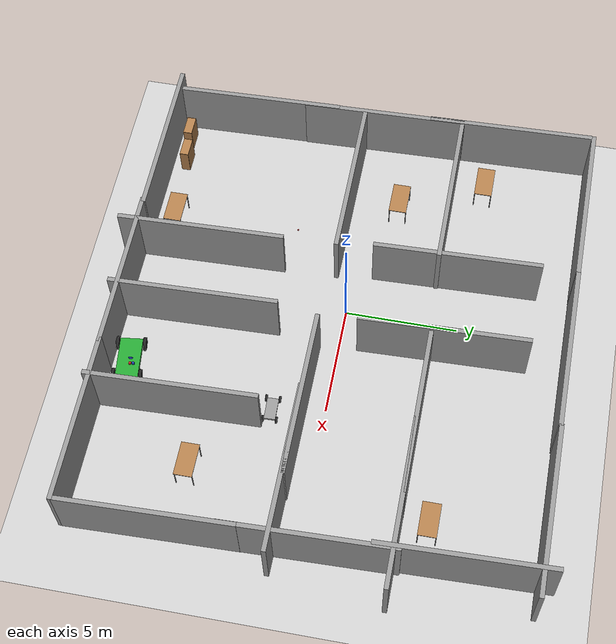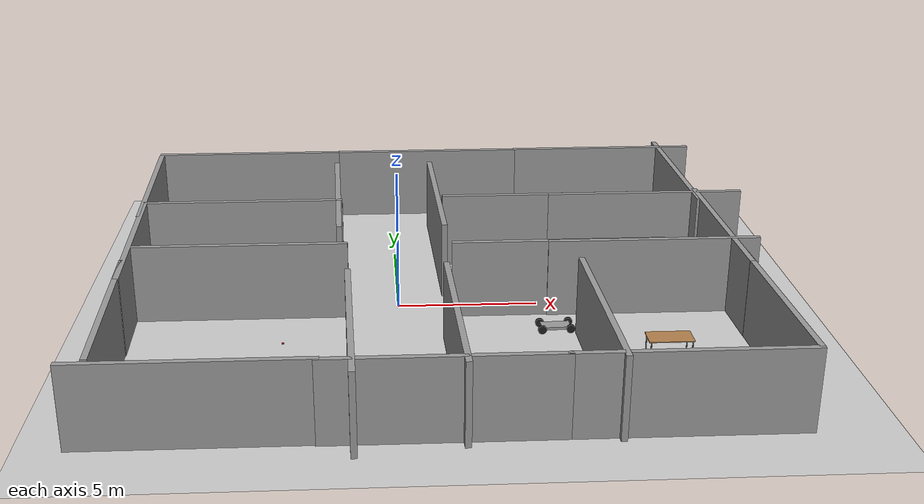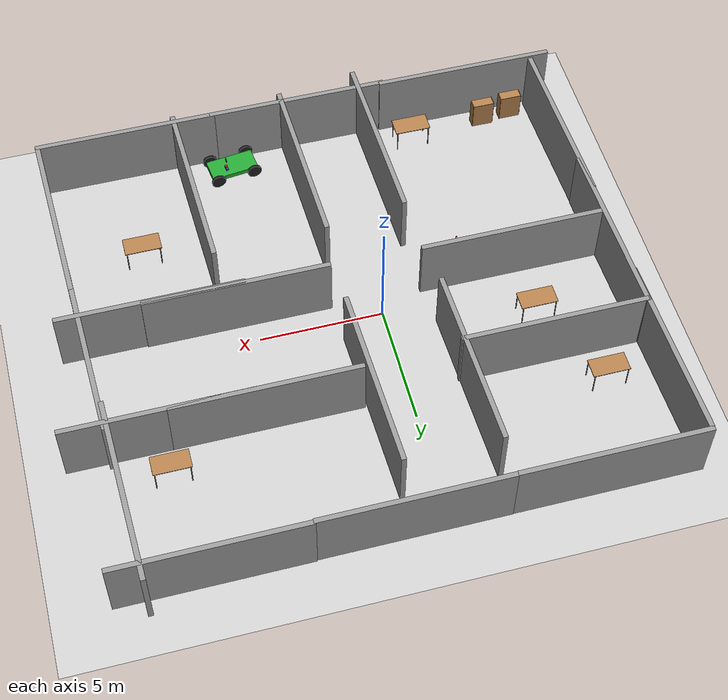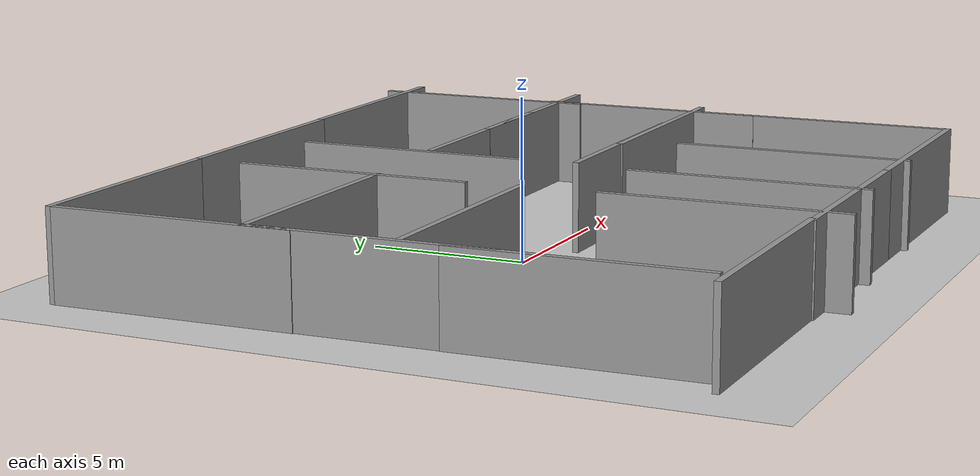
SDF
<sdf version="1.7">
 <world name="default">
  <light name="sun" type="directional">
   <pose>0 0 10 0 -0 0</pose>
   <diffuse>0.8 0.8 0.8 1</diffuse>
   <specular>0.2 0.2 0.2 1</specular>
   <attenuation>
    <range>1000</range>
    <constant>0.9</constant>
    <linear>0.01</linear>
    <quadratic>0.001</quadratic>
   </attenuation>
   <direction>-0.5 0.1 -0.9</direction>
   <spot><inner_angle>0</inner_angle><outer_angle>0</outer_angle><falloff>0</falloff></spot>
  </light>
  <model name="ground_plane">
   <static>1</static>
   <link name="link">
    <collision name="collision">
     <geometry><plane><normal>0 0 1</normal><size>100 100</size></plane></geometry>
     <surface>
      <contact><collide_bitmask>65535</collide_bitmask></contact>
      <friction><ode><mu>100</mu><mu2>50</mu2></ode></friction>
     </surface>
    </collision>
    <visual name="visual">
     <cast_shadows>0</cast_shadows>
     <geometry><plane><normal>0 0 1</normal><size>100 100</size></plane></geometry>
     <material>
      <script><uri>file://media/materials/scripts/gazebo.material</uri><name>Gazebo/Grey</name></script>
     </material>
    </visual>
   </link>
  </model>
  <gravity>0 0 -9.8</gravity>
  <magnetic_field>6e-06 2.3e-05 -4.2e-05</magnetic_field>
  <atmosphere type="adiabatic"/>
  <physics type="ode">
   <max_step_size>0.001</max_step_size>
   <real_time_factor>1</real_time_factor>
   <real_time_update_rate>1000</real_time_update_rate>
  </physics>
  <scene><ambient>0.4 0.4 0.4 1</ambient><background>0.7 0.7 0.7 1</background><shadows>1</shadows></scene>
  <spherical_coordinates>
   <surface_model>EARTH_WGS84</surface_model>
   <latitude_deg>0</latitude_deg>
   <longitude_deg>0</longitude_deg>
   <elevation>0</elevation>
   <heading_deg>0</heading_deg>
  </spherical_coordinates>
  <model name="grey_wall">
   <static>1</static>
   <link name="link">
    <pose>0 0 1.4 0 -0 0</pose>
    <collision name="collision"><geometry><box><size>7.5 0.2 2.8</size></box></geometry></collision>
    <visual name="visual">
     <cast_shadows>0</cast_shadows>
     <geometry><box><size>7.5 0.2 2.8</size></box></geometry>
     <material>
      <script>
       <uri>model://grey_wall/materials/scripts</uri>
       <uri>model://grey_wall/materials/textures</uri>
       <name>vrc/grey_wall</name>
      </script>
     </material>
    </visual>
   </link>
   <pose>-5.9992 9.85252 0 0 -0 0</pose>
  </model>
  <model name="grey_wall_clone">
   <static>1</static>
   <link name="link">
    <pose>0 0 1.4 0 -0 0</pose>
    <collision name="collision"><geometry><box><size>7.5 0.2 2.8</size></box></geometry></collision>
    <visual name="visual">
     <cast_shadows>0</cast_shadows>
     <geometry><box><size>7.5 0.2 2.8</size></box></geometry>
     <material>
      <script>
       <uri>model://grey_wall/materials/scripts</uri>
       <uri>model://grey_wall/materials/textures</uri>
       <name>vrc/grey_wall</name>
      </script>
     </material>
    </visual>
   </link>
   <pose>1.47725 9.86404 0 0 -0 0</pose>
  </model>
  <model name="grey_wall_clone_0">
   <static>1</static>
   <link name="link">
    <pose>0 0 1.4 0 -0 0</pose>
    <collision name="collision"><geometry><box><size>7.5 0.2 2.8</size></box></geometry></collision>
    <visual name="visual">
     <cast_shadows>0</cast_shadows>
     <geometry><box><size>7.5 0.2 2.8</size></box></geometry>
     <material>
      <script>
       <uri>model://grey_wall/materials/scripts</uri>
       <uri>model://grey_wall/materials/textures</uri>
       <name>vrc/grey_wall</name>
      </script>
     </material>
    </visual>
   </link>
   <pose>8.90751 9.9006 0 0 -0 0</pose>
  </model>
  <model name="grey_wall_clone_1">
   <static>1</static>
   <link name="link">
    <pose>0 0 1.4 0 -0 0</pose>
    <collision name="collision"><geometry><box><size>7.5 0.2 2.8</size></box></geometry></collision>
    <visual name="visual">
     <cast_shadows>0</cast_shadows>
     <geometry><box><size>7.5 0.2 2.8</size></box></geometry>
     <material>
      <script>
       <uri>model://grey_wall/materials/scripts</uri>
       <uri>model://grey_wall/materials/textures</uri>
       <name>vrc/grey_wall</name>
      </script>
     </material>
    </visual>
   </link>
   <pose>-5.77244 3.76137 0 0 -0 0</pose>
  </model>
  <model name="grey_wall_clone_2">
   <static>1</static>
   <link name="link">
    <pose>0 0 1.4 0 -0 0</pose>
    <collision name="collision"><geometry><box><size>7.5 0.2 2.8</size></box></geometry></collision>
    <visual name="visual">
     <cast_shadows>0</cast_shadows>
     <geometry><box><size>7.5 0.2 2.8</size></box></geometry>
     <material>
      <script>
       <uri>model://grey_wall/materials/scripts</uri>
       <uri>model://grey_wall/materials/textures</uri>
       <name>vrc/grey_wall</name>
      </script>
     </material>
    </visual>
   </link>
   <pose>5.54541 4 0 0 -0 0</pose>
  </model>
  <model name="grey_wall_clone_3">
   <static>1</static>
   <link name="link">
    <pose>0 0 1.4 0 -0 0</pose>
    <collision name="collision"><geometry><box><size>7.5 0.2 2.8</size></box></geometry></collision>
    <visual name="visual">
     <cast_shadows>0</cast_shadows>
     <geometry><box><size>7.5 0.2 2.8</size></box></geometry>
     <material>
      <script>
       <uri>model://grey_wall/materials/scripts</uri>
       <uri>model://grey_wall/materials/textures</uri>
       <name>vrc/grey_wall</name>
      </script>
     </material>
    </visual>
   </link>
   <pose>-5.51815 -0.784604 0 0 -0 0</pose>
  </model>
  <model name="grey_wall_clone_4">
   <static>1</static>
   <link name="link">
    <pose>0 0 1.4 0 -0 0</pose>
    <collision name="collision"><geometry><box><size>7.5 0.2 2.8</size></box></geometry></collision>
    <visual name="visual">
     <cast_shadows>0</cast_shadows>
     <geometry><box><size>7.5 0.2 2.8</size></box></geometry>
     <material>
      <script>
       <uri>model://grey_wall/materials/scripts</uri>
       <uri>model://grey_wall/materials/textures</uri>
       <name>vrc/grey_wall</name>
      </script>
     </material>
    </visual>
   </link>
   <pose>-6.21793 -9.72473 0 0 -0 0</pose>
  </model>
  <model name="grey_wall_clone_5">
   <static>1</static>
   <link name="link">
    <pose>0 0 1.4 0 -0 0</pose>
    <collision name="collision"><geometry><box><size>7.5 0.2 2.8</size></box></geometry></collision>
    <visual name="visual">
     <cast_shadows>0</cast_shadows>
     <geometry><box><size>7.5 0.2 2.8</size></box></geometry>
     <material>
      <script>
       <uri>model://grey_wall/materials/scripts</uri>
       <uri>model://grey_wall/materials/textures</uri>
       <name>vrc/grey_wall</name>
      </script>
     </material>
    </visual>
   </link>
   <pose>1.09571 -9.7785 0 0 -0 0</pose>
  </model>
  <model name="grey_wall_clone_6">
   <static>1</static>
   <link name="link">
    <pose>0 0 1.4 0 -0 0</pose>
    <collision name="collision"><geometry><box><size>7.5 0.2 2.8</size></box></geometry></collision>
    <visual name="visual">
     <cast_shadows>0</cast_shadows>
     <geometry><box><size>7.5 0.2 2.8</size></box></geometry>
     <material>
      <script>
       <uri>model://grey_wall/materials/scripts</uri>
       <uri>model://grey_wall/materials/textures</uri>
       <name>vrc/grey_wall</name>
      </script>
     </material>
    </visual>
   </link>
   <pose>8.39767 -9.77612 0 0 -0 0</pose>
  </model>
  <model name="grey_wall_clone_7">
   <static>1</static>
   <link name="link">
    <pose>0 0 1.4 0 -0 0</pose>
    <collision name="collision"><geometry><box><size>7.5 0.2 2.8</size></box></geometry></collision>
    <visual name="visual">
     <cast_shadows>0</cast_shadows>
     <geometry><box><size>7.5 0.2 2.8</size></box></geometry>
     <material>
      <script>
       <uri>model://grey_wall/materials/scripts</uri>
       <uri>model://grey_wall/materials/textures</uri>
       <name>vrc/grey_wall</name>
      </script>
     </material>
    </visual>
   </link>
   <pose>5.62138 -0.90834 0 0 -0 0</pose>
  </model>
  <model name="grey_wall_clone_8">
   <static>1</static>
   <link name="link">
    <pose>0 0 1.4 0 -0 0</pose>
    <collision name="collision"><geometry><box><size>7.5 0.2 2.8</size></box></geometry></collision>
    <visual name="visual">
     <cast_shadows>0</cast_shadows>
     <geometry><box><size>7.5 0.2 2.8</size></box></geometry>
     <material>
      <script>
       <uri>model://grey_wall/materials/scripts</uri>
       <uri>model://grey_wall/materials/textures</uri>
       <name>vrc/grey_wall</name>
      </script>
     </material>
    </visual>
   </link>
   <pose>8.99858 -0.960213 0 0 -0 0</pose>
  </model>
  <model name="grey_wall_clone_9">
   <static>1</static>
   <link name="link">
    <pose>0 0 1.4 0 -0 0</pose>
    <collision name="collision"><geometry><box><size>7.5 0.2 2.8</size></box></geometry></collision>
    <visual name="visual">
     <cast_shadows>0</cast_shadows>
     <geometry><box><size>7.5 0.2 2.8</size></box></geometry>
     <material>
      <script>
       <uri>model://grey_wall/materials/scripts</uri>
       <uri>model://grey_wall/materials/textures</uri>
       <name>vrc/grey_wall</name>
      </script>
     </material>
    </visual>
   </link>
   <pose>9.64209 3.99652 0 0 -0 0</pose>
  </model>
  <model name="grey_wall_clone_10">
   <static>1</static>
   <link name="link">
    <pose>0 0 1.4 0 -0 0</pose>
    <collision name="collision"><geometry><box><size>7.5 0.2 2.8</size></box></geometry></collision>
    <visual name="visual">
     <cast_shadows>0</cast_shadows>
     <geometry><box><size>7.5 0.2 2.8</size></box></geometry>
     <material>
      <script>
       <uri>model://grey_wall/materials/scripts</uri>
       <uri>model://grey_wall/materials/textures</uri>
       <name>vrc/grey_wall</name>
      </script>
     </material>
    </visual>
   </link>
   <pose>-9.22958 -5.76702 0 0 -0 1.59909</pose>
  </model>
  <model name="grey_wall_clone_10_clone">
   <static>1</static>
   <link name="link">
    <pose>0 0 1.4 0 -0 0</pose>
    <collision name="collision"><geometry><box><size>7.5 0.2 2.8</size></box></geometry></collision>
    <visual name="visual">
     <cast_shadows>0</cast_shadows>
     <geometry><box><size>7.5 0.2 2.8</size></box></geometry>
     <material>
      <script>
       <uri>model://grey_wall/materials/scripts</uri>
       <uri>model://grey_wall/materials/textures</uri>
       <name>vrc/grey_wall</name>
      </script>
     </material>
    </visual>
   </link>
   <pose>-9.37081 0.123734 0 0 -0 1.59909</pose>
  </model>
  <model name="grey_wall_clone_10_clone_0">
   <static>1</static>
   <link name="link">
    <pose>0 0 1.4 0 -0 0</pose>
    <collision name="collision"><geometry><box><size>7.5 0.2 2.8</size></box></geometry></collision>
    <visual name="visual">
     <cast_shadows>0</cast_shadows>
     <geometry><box><size>7.5 0.2 2.8</size></box></geometry>
     <material>
      <script>
       <uri>model://grey_wall/materials/scripts</uri>
       <uri>model://grey_wall/materials/textures</uri>
       <name>vrc/grey_wall</name>
      </script>
     </material>
    </visual>
   </link>
   <pose>-9.56639 6.02526 0 0 -0 1.59909</pose>
  </model>
  <model name="grey_wall_clone_10_clone_1">
   <static>1</static>
   <link name="link">
    <pose>0 0 1.4 0 -0 0</pose>
    <collision name="collision"><geometry><box><size>7.5 0.2 2.8</size></box></geometry></collision>
    <visual name="visual">
     <cast_shadows>0</cast_shadows>
     <geometry><box><size>7.5 0.2 2.8</size></box></geometry>
     <material>
      <script>
       <uri>model://grey_wall/materials/scripts</uri>
       <uri>model://grey_wall/materials/textures</uri>
       <name>vrc/grey_wall</name>
      </script>
     </material>
    </visual>
   </link>
   <pose>-1.63794 -6.89457 0 0 -0 1.59909</pose>
  </model>
  <model name="grey_wall_clone_10_clone_2">
   <static>1</static>
   <link name="link">
    <pose>0 0 1.4 0 -0 0</pose>
    <collision name="collision"><geometry><box><size>7.5 0.2 2.8</size></box></geometry></collision>
    <visual name="visual">
     <cast_shadows>0</cast_shadows>
     <geometry><box><size>7.5 0.2 2.8</size></box></geometry>
     <material>
      <script>
       <uri>model://grey_wall/materials/scripts</uri>
       <uri>model://grey_wall/materials/textures</uri>
       <name>vrc/grey_wall</name>
      </script>
     </material>
    </visual>
   </link>
   <pose>-2.19743 4.57634 0 0 -0 1.59909</pose>
  </model>
  <model name="grey_wall_clone_10_clone_3">
   <static>1</static>
   <link name="link">
    <pose>0 0 1.4 0 -0 0</pose>
    <collision name="collision"><geometry><box><size>7.5 0.2 2.8</size></box></geometry></collision>
    <visual name="visual">
     <cast_shadows>0</cast_shadows>
     <geometry><box><size>7.5 0.2 2.8</size></box></geometry>
     <material>
      <script>
       <uri>model://grey_wall/materials/scripts</uri>
       <uri>model://grey_wall/materials/textures</uri>
       <name>vrc/grey_wall</name>
      </script>
     </material>
    </visual>
   </link>
   <pose>1.60325 4.53725 0 0 -0 1.59909</pose>
  </model>
  <model name="grey_wall_clone_10_clone_4">
   <static>1</static>
   <link name="link">
    <pose>0 0 1.4 0 -0 0</pose>
    <collision name="collision"><geometry><box><size>7.5 0.2 2.8</size></box></geometry></collision>
    <visual name="visual">
     <cast_shadows>0</cast_shadows>
     <geometry><box><size>7.5 0.2 2.8</size></box></geometry>
     <material>
      <script>
       <uri>model://grey_wall/materials/scripts</uri>
       <uri>model://grey_wall/materials/textures</uri>
       <name>vrc/grey_wall</name>
      </script>
     </material>
    </visual>
   </link>
   <pose>1.67397 -6.46223 0 0 -0 1.59909</pose>
  </model>
  <model name="grey_wall_clone_10_clone_5">
   <static>1</static>
   <link name="link">
    <pose>0 0 1.4 0 -0 0</pose>
    <collision name="collision"><geometry><box><size>7.5 0.2 2.8</size></box></geometry></collision>
    <visual name="visual">
     <cast_shadows>0</cast_shadows>
     <geometry><box><size>7.5 0.2 2.8</size></box></geometry>
     <material>
      <script>
       <uri>model://grey_wall/materials/scripts</uri>
       <uri>model://grey_wall/materials/textures</uri>
       <name>vrc/grey_wall</name>
      </script>
     </material>
    </visual>
   </link>
   <pose>6.2648 -6.32249 0 0 -0 1.59909</pose>
  </model>
  <model name="grey_wall_clone_10_clone_6">
   <static>1</static>
   <link name="link">
    <pose>0 0 1.4 0 -0 0</pose>
    <collision name="collision"><geometry><box><size>7.5 0.2 2.8</size></box></geometry></collision>
    <visual name="visual">
     <cast_shadows>0</cast_shadows>
     <geometry><box><size>7.5 0.2 2.8</size></box></geometry>
     <material>
      <script>
       <uri>model://grey_wall/materials/scripts</uri>
       <uri>model://grey_wall/materials/textures</uri>
       <name>vrc/grey_wall</name>
      </script>
     </material>
    </visual>
   </link>
   <pose>11.9522 -5.98919 0 0 -0 1.59909</pose>
  </model>
  <model name="grey_wall_clone_10_clone_7">
   <static>1</static>
   <link name="link">
    <pose>0 0 1.4 0 -0 0</pose>
    <collision name="collision"><geometry><box><size>7.5 0.2 2.8</size></box></geometry></collision>
    <visual name="visual">
     <cast_shadows>0</cast_shadows>
     <geometry><box><size>7.5 0.2 2.8</size></box></geometry>
     <material>
      <script>
       <uri>model://grey_wall/materials/scripts</uri>
       <uri>model://grey_wall/materials/textures</uri>
       <name>vrc/grey_wall</name>
      </script>
     </material>
    </visual>
   </link>
   <pose>11.7586 0.575491 0 0 -0 1.59909</pose>
  </model>
  <model name="grey_wall_clone_10_clone_8">
   <static>1</static>
   <link name="link">
    <pose>0 0 1.4 0 -0 0</pose>
    <collision name="collision"><geometry><box><size>7.5 0.2 2.8</size></box></geometry></collision>
    <visual name="visual">
     <cast_shadows>0</cast_shadows>
     <geometry><box><size>7.5 0.2 2.8</size></box></geometry>
     <material>
      <script>
       <uri>model://grey_wall/materials/scripts</uri>
       <uri>model://grey_wall/materials/textures</uri>
       <name>vrc/grey_wall</name>
      </script>
     </material>
    </visual>
   </link>
   <pose>11.475 6.85135 0 0 -0 1.59909</pose>
  </model>
  <model name="bookshelf">
   <static>1</static>
   <link name="link">
    <inertial><mass>1</mass></inertial>
    <collision name="back">
     <pose>0 0.005 0.6 0 -0 0</pose>
     <geometry><box><size>0.9 0.01 1.2</size></box></geometry>
    </collision>
    <visual name="visual1">
     <pose>0 0.005 0.6 0 -0 0</pose>
     <geometry><box><size>0.9 0.01 1.2</size></box></geometry>
     <material>
      <script><uri>file://media/materials/scripts/gazebo.material</uri><name>Gazebo/Wood</name></script>
     </material>
    </visual>
    <collision name="left_side">
     <pose>0.45 -0.195 0.6 0 -0 0</pose>
     <geometry><box><size>0.02 0.4 1.2</size></box></geometry>
    </collision>
    <visual name="visual2">
     <pose>0.45 -0.195 0.6 0 -0 0</pose>
     <geometry><box><size>0.02 0.4 1.2</size></box></geometry>
     <material>
      <script><uri>file://media/materials/scripts/gazebo.material</uri><name>Gazebo/Wood</name></script>
     </material>
    </visual>
    <collision name="right_side">
     <pose>-0.45 -0.195 0.6 0 -0 0</pose>
     <geometry><box><size>0.02 0.4 1.2</size></box></geometry>
    </collision>
    <visual name="visual3">
     <pose>-0.45 -0.195 0.6 0 -0 0</pose>
     <geometry><box><size>0.02 0.4 1.2</size></box></geometry>
     <material>
      <script><uri>file://media/materials/scripts/gazebo.material</uri><name>Gazebo/Wood</name></script>
     </material>
    </visual>
    <collision name="bottom">
     <pose>0 -0.195 0.03 0 -0 0</pose>
     <geometry><box><size>0.88 0.4 0.06</size></box></geometry>
    </collision>
    <visual name="visual4">
     <pose>0 -0.195 0.03 0 -0 0</pose>
     <geometry><box><size>0.88 0.4 0.06</size></box></geometry>
     <material>
      <script><uri>file://media/materials/scripts/gazebo.material</uri><name>Gazebo/Wood</name></script>
     </material>
    </visual>
    <collision name="top">
     <pose>0 -0.195 1.19 0 -0 0</pose>
     <geometry><box><size>0.88 0.4 0.02</size></box></geometry>
    </collision>
    <visual name="visual5">
     <pose>0 -0.195 1.19 0 -0 0</pose>
     <geometry><box><size>0.88 0.4 0.02</size></box></geometry>
     <material>
      <script><uri>file://media/materials/scripts/gazebo.material</uri><name>Gazebo/Wood</name></script>
     </material>
    </visual>
    <collision name="low_shelf">
     <pose>0 -0.195 0.43 0 -0 0</pose>
     <geometry><box><size>0.88 0.4 0.02</size></box></geometry>
    </collision>
    <visual name="visual6">
     <pose>0 -0.195 0.43 0 -0 0</pose>
     <geometry><box><size>0.88 0.4 0.02</size></box></geometry>
     <material>
      <script><uri>file://media/materials/scripts/gazebo.material</uri><name>Gazebo/Wood</name></script>
     </material>
    </visual>
    <collision name="high_shelf">
     <pose>0 -0.195 0.8 0 -0 0</pose>
     <geometry><box><size>0.88 0.4 0.02</size></box></geometry>
    </collision>
    <visual name="visual7">
     <pose>0 -0.195 0.8 0 -0 0</pose>
     <geometry><box><size>0.88 0.4 0.02</size></box></geometry>
     <material>
      <script><uri>file://media/materials/scripts/gazebo.material</uri><name>Gazebo/Wood</name></script>
     </material>
    </visual>
   </link>
   <pose>-8.20456 -8.92305 0 0 -0 0</pose>
  </model>
  <model name="bookshelf_clone">
   <static>1</static>
   <link name="link">
    <inertial><mass>1</mass></inertial>
    <collision name="back">
     <pose>0 0.005 0.6 0 -0 0</pose>
     <geometry><box><size>0.9 0.01 1.2</size></box></geometry>
    </collision>
    <visual name="visual1">
     <pose>0 0.005 0.6 0 -0 0</pose>
     <geometry><box><size>0.9 0.01 1.2</size></box></geometry>
     <material>
      <script><uri>file://media/materials/scripts/gazebo.material</uri><name>Gazebo/Wood</name></script>
     </material>
    </visual>
    <collision name="left_side">
     <pose>0.45 -0.195 0.6 0 -0 0</pose>
     <geometry><box><size>0.02 0.4 1.2</size></box></geometry>
    </collision>
    <visual name="visual2">
     <pose>0.45 -0.195 0.6 0 -0 0</pose>
     <geometry><box><size>0.02 0.4 1.2</size></box></geometry>
     <material>
      <script><uri>file://media/materials/scripts/gazebo.material</uri><name>Gazebo/Wood</name></script>
     </material>
    </visual>
    <collision name="right_side">
     <pose>-0.45 -0.195 0.6 0 -0 0</pose>
     <geometry><box><size>0.02 0.4 1.2</size></box></geometry>
    </collision>
    <visual name="visual3">
     <pose>-0.45 -0.195 0.6 0 -0 0</pose>
     <geometry><box><size>0.02 0.4 1.2</size></box></geometry>
     <material>
      <script><uri>file://media/materials/scripts/gazebo.material</uri><name>Gazebo/Wood</name></script>
     </material>
    </visual>
    <collision name="bottom">
     <pose>0 -0.195 0.03 0 -0 0</pose>
     <geometry><box><size>0.88 0.4 0.06</size></box></geometry>
    </collision>
    <visual name="visual4">
     <pose>0 -0.195 0.03 0 -0 0</pose>
     <geometry><box><size>0.88 0.4 0.06</size></box></geometry>
     <material>
      <script><uri>file://media/materials/scripts/gazebo.material</uri><name>Gazebo/Wood</name></script>
     </material>
    </visual>
    <collision name="top">
     <pose>0 -0.195 1.19 0 -0 0</pose>
     <geometry><box><size>0.88 0.4 0.02</size></box></geometry>
    </collision>
    <visual name="visual5">
     <pose>0 -0.195 1.19 0 -0 0</pose>
     <geometry><box><size>0.88 0.4 0.02</size></box></geometry>
     <material>
      <script><uri>file://media/materials/scripts/gazebo.material</uri><name>Gazebo/Wood</name></script>
     </material>
    </visual>
    <collision name="low_shelf">
     <pose>0 -0.195 0.43 0 -0 0</pose>
     <geometry><box><size>0.88 0.4 0.02</size></box></geometry>
    </collision>
    <visual name="visual6">
     <pose>0 -0.195 0.43 0 -0 0</pose>
     <geometry><box><size>0.88 0.4 0.02</size></box></geometry>
     <material>
      <script><uri>file://media/materials/scripts/gazebo.material</uri><name>Gazebo/Wood</name></script>
     </material>
    </visual>
    <collision name="high_shelf">
     <pose>0 -0.195 0.8 0 -0 0</pose>
     <geometry><box><size>0.88 0.4 0.02</size></box></geometry>
    </collision>
    <visual name="visual7">
     <pose>0 -0.195 0.8 0 -0 0</pose>
     <geometry><box><size>0.88 0.4 0.02</size></box></geometry>
     <material>
      <script><uri>file://media/materials/scripts/gazebo.material</uri><name>Gazebo/Wood</name></script>
     </material>
    </visual>
   </link>
   <pose>-6.93526 -8.78781 0 0 -0 0</pose>
  </model>
  <model name="table">
   <static>1</static>
   <link name="link">
    <collision name="surface">
     <pose>0 0 1 0 -0 0</pose>
     <geometry><box><size>1.5 0.8 0.03</size></box></geometry>
     <surface><friction><ode><mu>0.6</mu><mu2>0.6</mu2></ode></friction></surface>
    </collision>
    <visual name="visual1">
     <pose>0 0 1 0 -0 0</pose>
     <geometry><box><size>1.5 0.8 0.03</size></box></geometry>
     <material>
      <script><uri>file://media/materials/scripts/gazebo.material</uri><name>Gazebo/Wood</name></script>
     </material>
    </visual>
    <collision name="front_left_leg">
     <pose>0.68 0.38 0.5 0 -0 0</pose>
     <geometry><cylinder><radius>0.02</radius><length>1</length></cylinder></geometry>
    </collision>
    <visual name="front_left_leg">
     <pose>0.68 0.38 0.5 0 -0 0</pose>
     <geometry><cylinder><radius>0.02</radius><length>1</length></cylinder></geometry>
     <material>
      <script><uri>file://media/materials/scripts/gazebo.material</uri><name>Gazebo/Grey</name></script>
     </material>
    </visual>
    <collision name="front_right_leg">
     <pose>0.68 -0.38 0.5 0 -0 0</pose>
     <geometry><cylinder><radius>0.02</radius><length>1</length></cylinder></geometry>
    </collision>
    <visual name="front_right_leg">
     <pose>0.68 -0.38 0.5 0 -0 0</pose>
     <geometry><cylinder><radius>0.02</radius><length>1</length></cylinder></geometry>
     <material>
      <script><uri>file://media/materials/scripts/gazebo.material</uri><name>Gazebo/Grey</name></script>
     </material>
    </visual>
    <collision name="back_right_leg">
     <pose>-0.68 -0.38 0.5 0 -0 0</pose>
     <geometry><cylinder><radius>0.02</radius><length>1</length></cylinder></geometry>
    </collision>
    <visual name="back_right_leg">
     <pose>-0.68 -0.38 0.5 0 -0 0</pose>
     <geometry><cylinder><radius>0.02</radius><length>1</length></cylinder></geometry>
     <material>
      <script><uri>file://media/materials/scripts/gazebo.material</uri><name>Gazebo/Grey</name></script>
     </material>
    </visual>
    <collision name="back_left_leg">
     <pose>-0.68 0.38 0.5 0 -0 0</pose>
     <geometry><cylinder><radius>0.02</radius><length>1</length></cylinder></geometry>
    </collision>
    <visual name="back_left_leg">
     <pose>-0.68 0.38 0.5 0 -0 0</pose>
     <geometry><cylinder><radius>0.02</radius><length>1</length></cylinder></geometry>
     <material>
      <script><uri>file://media/materials/scripts/gazebo.material</uri><name>Gazebo/Grey</name></script>
     </material>
    </visual>
   </link>
   <pose>-3.63233 -8.6998 0 0 -0 0</pose>
  </model>
  <model name="car">
   <link name="chassis">
    <pose>0 0 0.3 0 -0 0</pose>
    <collision name="collision"><geometry><box><size>2 1 0.2</size></box></geometry></collision>
    <visual name="visual">
     <geometry><box><size>2 1 0.2</size></box></geometry>
     <material>
      <script><uri>file://media/materials/scripts/gazebo.material</uri><name>Gazebo/Green</name></script>
     </material>
    </visual>
    <inertial>
     <inertia><ixx>1</ixx><ixy>0</ixy><ixz>0</ixz><iyy>1</iyy><iyz>0</iyz><izz>1</izz></inertia>
     <mass>1</mass>
    </inertial>
   </link>
   <link name="front_left_wheel">
    <pose>0.8 0.6 0.3 -0 1.5707 1.5707</pose>
    <collision name="collision">
     <geometry><cylinder><radius>0.3</radius><length>0.1</length></cylinder></geometry>
    </collision>
    <visual name="visual">
     <geometry><cylinder><radius>0.3</radius><length>0.1</length></cylinder></geometry>
     <material>
      <script><uri>file://media/materials/scripts/gazebo.material</uri><name>Gazebo/Black</name></script>
     </material>
    </visual>
    <inertial>
     <inertia><ixx>1</ixx><ixy>0</ixy><ixz>0</ixz><iyy>1</iyy><iyz>0</iyz><izz>1</izz></inertia>
     <mass>1</mass>
    </inertial>
   </link>
   <link name="front_right_wheel">
    <pose>0.8 -0.6 0.3 -0 1.5707 1.5707</pose>
    <collision name="collision">
     <geometry><cylinder><radius>0.3</radius><length>0.1</length></cylinder></geometry>
    </collision>
    <visual name="visual">
     <geometry><cylinder><radius>0.3</radius><length>0.1</length></cylinder></geometry>
     <material>
      <script><uri>file://media/materials/scripts/gazebo.material</uri><name>Gazebo/Black</name></script>
     </material>
    </visual>
    <inertial>
     <inertia><ixx>1</ixx><ixy>0</ixy><ixz>0</ixz><iyy>1</iyy><iyz>0</iyz><izz>1</izz></inertia>
     <mass>1</mass>
    </inertial>
   </link>
   <link name="back_right_wheel">
    <pose>-0.8 -0.6 0.3 -0 1.5707 1.5707</pose>
    <collision name="collision">
     <geometry><cylinder><radius>0.3</radius><length>0.1</length></cylinder></geometry>
    </collision>
    <visual name="visual">
     <geometry><cylinder><radius>0.3</radius><length>0.1</length></cylinder></geometry>
     <material>
      <script><uri>file://media/materials/scripts/gazebo.material</uri><name>Gazebo/Black</name></script>
     </material>
    </visual>
    <inertial>
     <inertia><ixx>1</ixx><ixy>0</ixy><ixz>0</ixz><iyy>1</iyy><iyz>0</iyz><izz>1</izz></inertia>
     <mass>1</mass>
    </inertial>
   </link>
   <link name="back_left_wheel">
    <pose>-0.8 0.6 0.3 -0 1.5707 1.5707</pose>
    <collision name="collision">
     <geometry><cylinder><radius>0.3</radius><length>0.1</length></cylinder></geometry>
    </collision>
    <visual name="visual">
     <geometry><cylinder><radius>0.3</radius><length>0.1</length></cylinder></geometry>
     <material>
      <script><uri>file://media/materials/scripts/gazebo.material</uri><name>Gazebo/Black</name></script>
     </material>
    </visual>
    <inertial>
     <inertia><ixx>1</ixx><ixy>0</ixy><ixz>0</ixz><iyy>1</iyy><iyz>0</iyz><izz>1</izz></inertia>
     <mass>1</mass>
    </inertial>
   </link>
   <link name="gas_pedal">
    <pose>0.3 0.1 0.5 0 -0 0</pose>
    <collision name="collision"><geometry><box><size>0.1 0.1 0.1</size></box></geometry></collision>
    <visual name="visual">
     <geometry><box><size>0.1 0.1 0.1</size></box></geometry>
     <material>
      <script><uri>file://media/materials/scripts/gazebo.material</uri><name>Gazebo/Red</name></script>
     </material>
    </visual>
    <inertial>
     <inertia><ixx>1</ixx><ixy>0</ixy><ixz>0</ixz><iyy>1</iyy><iyz>0</iyz><izz>1</izz></inertia>
     <mass>1</mass>
    </inertial>
   </link>
   <link name="brake_pedal">
    <pose>0.3 0.25 0.5 0 -0 0</pose>
    <collision name="collision"><geometry><box><size>0.1 0.1 0.1</size></box></geometry></collision>
    <visual name="visual">
     <geometry><box><size>0.1 0.1 0.1</size></box></geometry>
     <material>
      <script><uri>file://media/materials/scripts/gazebo.material</uri><name>Gazebo/Blue</name></script>
     </material>
    </visual>
    <inertial>
     <inertia><ixx>1</ixx><ixy>0</ixy><ixz>0</ixz><iyy>1</iyy><iyz>0</iyz><izz>1</izz></inertia>
     <mass>1</mass>
    </inertial>
   </link>
   <link name="steering_wheel">
    <pose>0.3 0.2 1 0 1.5707 0</pose>
    <collision name="collision">
     <geometry><cylinder><radius>0.1</radius><length>0.01</length></cylinder></geometry>
    </collision>
    <visual name="visual">
     <geometry><cylinder><radius>0.1</radius><length>0.01</length></cylinder></geometry>
     <material>
      <script><uri>file://media/materials/scripts/gazebo.material</uri><name>Gazebo/Blue</name></script>
     </material>
    </visual>
    <inertial>
     <inertia><ixx>1</ixx><ixy>0</ixy><ixz>0</ixz><iyy>1</iyy><iyz>0</iyz><izz>1</izz></inertia>
     <mass>1</mass>
    </inertial>
   </link>
   <joint name="gas_joint" type="prismatic">
    <parent>chassis</parent>
    <child>gas_pedal</child>
    <axis>
     <xyz expressed_in="__model__">1 0 0</xyz>
     <limit><lower>0</lower><upper>0.2</upper></limit>
     <dynamics><spring_reference>0</spring_reference><spring_stiffness>0</spring_stiffness></dynamics>
    </axis>
   </joint>
   <joint name="brake_joint" type="prismatic">
    <parent>chassis</parent>
    <child>brake_pedal</child>
    <axis>
     <xyz expressed_in="__model__">1 0 0</xyz>
     <limit><lower>0</lower><upper>0.2</upper></limit>
     <dynamics><spring_reference>0</spring_reference><spring_stiffness>0</spring_stiffness></dynamics>
    </axis>
   </joint>
   <joint name="steering_joint" type="revolute">
    <parent>chassis</parent>
    <child>steering_wheel</child>
    <axis>
     <xyz expressed_in="__model__">1 0 0</xyz>
     <limit><lower>-7.853</lower><upper>7.853</upper></limit>
     <dynamics><spring_reference>0</spring_reference><spring_stiffness>0</spring_stiffness></dynamics>
    </axis>
   </joint>
   <joint name="front_left_joint" type="revolute2">
    <parent>chassis</parent>
    <child>front_left_wheel</child>
    <axis>
     <xyz expressed_in="__model__">0 0 1</xyz>
     <limit><lower>-7.62771e-08</lower><upper>-7.62771e-08</upper></limit>
     <dynamics><spring_reference>0</spring_reference><spring_stiffness>0</spring_stiffness></dynamics>
    </axis>
    <axis2>
     <xyz expressed_in="__model__">0 1 0</xyz>
     <limit><upper>1e+16</upper><lower>-1e+16</lower></limit>
     <dynamics><spring_reference>0</spring_reference><spring_stiffness>0</spring_stiffness></dynamics>
    </axis2>
    <physics><ode><limit><cfm>0</cfm><erp>0.9</erp></limit></ode></physics>
   </joint>
   <joint name="front_right_joint" type="revolute2">
    <parent>chassis</parent>
    <child>front_right_wheel</child>
    <axis>
     <xyz expressed_in="__model__">0 0 1</xyz>
     <limit><lower>-7.62771e-08</lower><upper>-7.62771e-08</upper></limit>
     <dynamics><spring_reference>0</spring_reference><spring_stiffness>0</spring_stiffness></dynamics>
    </axis>
    <axis2>
     <xyz expressed_in="__model__">0 1 0</xyz>
     <limit><upper>1e+16</upper><lower>-1e+16</lower></limit>
     <dynamics><spring_reference>0</spring_reference><spring_stiffness>0</spring_stiffness></dynamics>
    </axis2>
    <physics><ode><limit><cfm>0</cfm><erp>0.9</erp></limit></ode></physics>
   </joint>
   <joint name="back_right_joint" type="revolute2">
    <parent>chassis</parent>
    <child>back_right_wheel</child>
    <axis>
     <xyz expressed_in="__model__">0 0 1</xyz>
     <limit><lower>0</lower><upper>0</upper></limit>
     <dynamics><spring_reference>0</spring_reference><spring_stiffness>0</spring_stiffness></dynamics>
    </axis>
    <axis2>
     <xyz expressed_in="__model__">0 1 0</xyz>
     <limit><upper>1e+16</upper><lower>-1e+16</lower></limit>
     <dynamics><spring_reference>0</spring_reference><spring_stiffness>0</spring_stiffness></dynamics>
    </axis2>
    <physics><ode><limit><cfm>0</cfm><erp>0.9</erp></limit></ode></physics>
   </joint>
   <joint name="back_left_joint" type="revolute2">
    <parent>chassis</parent>
    <child>back_left_wheel</child>
    <axis>
     <xyz expressed_in="__model__">0 0 1</xyz>
     <limit><lower>0</lower><upper>0</upper></limit>
     <dynamics><spring_reference>0</spring_reference><spring_stiffness>0</spring_stiffness></dynamics>
    </axis>
    <axis2>
     <xyz expressed_in="__model__">0 1 0</xyz>
     <limit><upper>1e+16</upper><lower>-1e+16</lower></limit>
     <dynamics><spring_reference>0</spring_reference><spring_stiffness>0</spring_stiffness></dynamics>
    </axis2>
    <physics><ode><limit><cfm>0</cfm><erp>0.9</erp></limit></ode></physics>
   </joint>
   <plugin name="vehicle" filename="libVehiclePlugin.so">
    <front_left>front_left_joint</front_left>
    <front_right>front_right_joint</front_right>
    <back_left>back_left_joint</back_left>
    <back_right>back_right_joint</back_right>
    <gas>gas_joint</gas>
    <brake>brake_joint</brake>
    <steering>steering_joint</steering>
    <front_power>10</front_power>
    <rear_power>10</rear_power>
    <tire_angle_range>0.5</tire_angle_range>
    <max_speed>10</max_speed>
    <aero_load>0.1</aero_load>
   </plugin>
   <pose>4.20854 -8.93563 3e-06 2e-06 2e-06 0.121943</pose>
  </model>
  <model name="cart_front_steer">
   <link name="chassis">
    <pose>0 0 0.15 0 -0 0</pose>
    <inertial>
     <pose>0.1 0 0 0 -0 0</pose>
     <mass>10</mass>
     <inertia>
      <ixx>0.216667</ixx>
      <iyy>0.841667</iyy>
      <izz>1.04167</izz>
      <ixy>0</ixy>
      <ixz>0</ixz>
      <iyz>0</iyz>
     </inertia>
    </inertial>
    <collision name="collision"><geometry><box><size>1 0.5 0.1</size></box></geometry></collision>
    <visual name="visual">
     <geometry><box><size>1 0.5 0.1</size></box></geometry>
     <material>
      <script><uri>file://media/materials/scripts/gazebo.material</uri><name>Gazebo/Grey</name></script>
     </material>
    </visual>
   </link>
   <link name="wheel_front_left">
    <pose>0.5 0.298 0.15 -1.5708 -0.087266 0</pose>
    <inertial>
     <mass>0.5</mass>
     <inertia>
      <ixx>0.00307917</ixx>
      <iyy>0.00307917</iyy>
      <izz>0.005625</izz>
      <ixy>0</ixy>
      <ixz>0</ixz>
      <iyz>0</iyz>
     </inertia>
    </inertial>
    <collision name="collision">
     <geometry><cylinder><radius>0.15</radius><length>0.08</length></cylinder></geometry>
    </collision>
    <visual name="visual">
     <geometry><cylinder><radius>0.15</radius><length>0.08</length></cylinder></geometry>
     <material>
      <script><uri>file://media/materials/scripts/gazebo.material</uri><name>Gazebo/Black</name></script>
     </material>
    </visual>
   </link>
   <joint name="wheel_front_left_steer_spin" type="universal">
    <parent>chassis</parent>
    <child>wheel_front_left</child>
    <axis>
     <xyz>0 -1 0</xyz>
     <limit><lower>-0.610865</lower><upper>0.610865</upper></limit>
     <dynamics><spring_reference>0</spring_reference><spring_stiffness>0</spring_stiffness></dynamics>
    </axis>
    <axis2>
     <xyz>0 0 1</xyz>
     <limit><upper>1e+16</upper><lower>-1e+16</lower></limit>
     <dynamics><spring_reference>0</spring_reference><spring_stiffness>0</spring_stiffness></dynamics>
    </axis2>
   </joint>
   <link name="wheel_front_right">
    <pose>0.5 -0.298 0.15 -1.5708 -0.087266 0</pose>
    <inertial>
     <mass>0.5</mass>
     <inertia>
      <ixx>0.00307917</ixx>
      <iyy>0.00307917</iyy>
      <izz>0.005625</izz>
      <ixy>0</ixy>
      <ixz>0</ixz>
      <iyz>0</iyz>
     </inertia>
    </inertial>
    <collision name="collision">
     <geometry><cylinder><radius>0.15</radius><length>0.08</length></cylinder></geometry>
    </collision>
    <visual name="visual">
     <geometry><cylinder><radius>0.15</radius><length>0.08</length></cylinder></geometry>
     <material>
      <script><uri>file://media/materials/scripts/gazebo.material</uri><name>Gazebo/Black</name></script>
     </material>
    </visual>
   </link>
   <joint name="wheel_front_right_steer_spin" type="universal">
    <parent>chassis</parent>
    <child>wheel_front_right</child>
    <axis>
     <xyz>0 -1 0</xyz>
     <limit><lower>-0.610865</lower><upper>0.610865</upper></limit>
     <dynamics><spring_reference>0</spring_reference><spring_stiffness>0</spring_stiffness></dynamics>
    </axis>
    <axis2>
     <xyz>0 0 1</xyz>
     <limit><upper>1e+16</upper><lower>-1e+16</lower></limit>
     <dynamics><spring_reference>0</spring_reference><spring_stiffness>0</spring_stiffness></dynamics>
    </axis2>
   </joint>
   <link name="wheel_rear_left">
    <pose>-0.5 0.298 0.15 -1.5708 0 0</pose>
    <inertial>
     <mass>0.5</mass>
     <inertia>
      <ixx>0.00307917</ixx>
      <iyy>0.00307917</iyy>
      <izz>0.005625</izz>
      <ixy>0</ixy>
      <ixz>0</ixz>
      <iyz>0</iyz>
     </inertia>
    </inertial>
    <collision name="collision">
     <geometry><cylinder><radius>0.15</radius><length>0.08</length></cylinder></geometry>
    </collision>
    <visual name="visual">
     <geometry><cylinder><radius>0.15</radius><length>0.08</length></cylinder></geometry>
     <material>
      <script><uri>file://media/materials/scripts/gazebo.material</uri><name>Gazebo/Black</name></script>
     </material>
    </visual>
   </link>
   <joint name="wheel_rear_left_spin" type="revolute">
    <parent>chassis</parent>
    <child>wheel_rear_left</child>
    <axis>
     <xyz>0 0 1</xyz>
     <limit><lower>-1e+16</lower><upper>1e+16</upper></limit>
     <dynamics><spring_reference>0</spring_reference><spring_stiffness>0</spring_stiffness></dynamics>
    </axis>
   </joint>
   <link name="wheel_rear_right">
    <pose>-0.5 -0.298 0.15 -1.5708 0 0</pose>
    <inertial>
     <mass>0.5</mass>
     <inertia>
      <ixx>0.00307917</ixx>
      <iyy>0.00307917</iyy>
      <izz>0.005625</izz>
      <ixy>0</ixy>
      <ixz>0</ixz>
      <iyz>0</iyz>
     </inertia>
    </inertial>
    <collision name="collision">
     <geometry><cylinder><radius>0.15</radius><length>0.08</length></cylinder></geometry>
    </collision>
    <visual name="visual">
     <geometry><cylinder><radius>0.15</radius><length>0.08</length></cylinder></geometry>
     <material>
      <script><uri>file://media/materials/scripts/gazebo.material</uri><name>Gazebo/Black</name></script>
     </material>
    </visual>
   </link>
   <joint name="wheel_rear_right_spin" type="revolute">
    <parent>chassis</parent>
    <child>wheel_rear_right</child>
    <axis>
     <xyz>0 0 1</xyz>
     <limit><lower>-1e+16</lower><upper>1e+16</upper></limit>
     <dynamics><spring_reference>0</spring_reference><spring_stiffness>0</spring_stiffness></dynamics>
    </axis>
   </joint>
   <pose>5.39107 -2.30318 -2e-06 -1.6e-05 -1e-06 0.040173</pose>
  </model>
  <model name="table_0">
   <static>1</static>
   <link name="link">
    <collision name="surface">
     <pose>0 0 1 0 -0 0</pose>
     <geometry><box><size>1.5 0.8 0.03</size></box></geometry>
     <surface><friction><ode><mu>0.6</mu><mu2>0.6</mu2></ode></friction></surface>
    </collision>
    <visual name="visual1">
     <pose>0 0 1 0 -0 0</pose>
     <geometry><box><size>1.5 0.8 0.03</size></box></geometry>
     <material>
      <script><uri>file://media/materials/scripts/gazebo.material</uri><name>Gazebo/Wood</name></script>
     </material>
    </visual>
    <collision name="front_left_leg">
     <pose>0.68 0.38 0.5 0 -0 0</pose>
     <geometry><cylinder><radius>0.02</radius><length>1</length></cylinder></geometry>
    </collision>
    <visual name="front_left_leg">
     <pose>0.68 0.38 0.5 0 -0 0</pose>
     <geometry><cylinder><radius>0.02</radius><length>1</length></cylinder></geometry>
     <material>
      <script><uri>file://media/materials/scripts/gazebo.material</uri><name>Gazebo/Grey</name></script>
     </material>
    </visual>
    <collision name="front_right_leg">
     <pose>0.68 -0.38 0.5 0 -0 0</pose>
     <geometry><cylinder><radius>0.02</radius><length>1</length></cylinder></geometry>
    </collision>
    <visual name="front_right_leg">
     <pose>0.68 -0.38 0.5 0 -0 0</pose>
     <geometry><cylinder><radius>0.02</radius><length>1</length></cylinder></geometry>
     <material>
      <script><uri>file://media/materials/scripts/gazebo.material</uri><name>Gazebo/Grey</name></script>
     </material>
    </visual>
    <collision name="back_right_leg">
     <pose>-0.68 -0.38 0.5 0 -0 0</pose>
     <geometry><cylinder><radius>0.02</radius><length>1</length></cylinder></geometry>
    </collision>
    <visual name="back_right_leg">
     <pose>-0.68 -0.38 0.5 0 -0 0</pose>
     <geometry><cylinder><radius>0.02</radius><length>1</length></cylinder></geometry>
     <material>
      <script><uri>file://media/materials/scripts/gazebo.material</uri><name>Gazebo/Grey</name></script>
     </material>
    </visual>
    <collision name="back_left_leg">
     <pose>-0.68 0.38 0.5 0 -0 0</pose>
     <geometry><cylinder><radius>0.02</radius><length>1</length></cylinder></geometry>
    </collision>
    <visual name="back_left_leg">
     <pose>-0.68 0.38 0.5 0 -0 0</pose>
     <geometry><cylinder><radius>0.02</radius><length>1</length></cylinder></geometry>
     <material>
      <script><uri>file://media/materials/scripts/gazebo.material</uri><name>Gazebo/Grey</name></script>
     </material>
    </visual>
   </link>
   <pose>-7.60507 5.21085 0 0 -0 0</pose>
  </model>
  <model name="table_0_clone">
   <static>1</static>
   <link name="link">
    <collision name="surface">
     <pose>0 0 1 0 -0 0</pose>
     <geometry><box><size>1.5 0.8 0.03</size></box></geometry>
     <surface><friction><ode><mu>0.6</mu><mu2>0.6</mu2></ode></friction></surface>
    </collision>
    <visual name="visual1">
     <pose>0 0 1 0 -0 0</pose>
     <geometry><box><size>1.5 0.8 0.03</size></box></geometry>
     <material>
      <script><uri>file://media/materials/scripts/gazebo.material</uri><name>Gazebo/Wood</name></script>
     </material>
    </visual>
    <collision name="front_left_leg">
     <pose>0.68 0.38 0.5 0 -0 0</pose>
     <geometry><cylinder><radius>0.02</radius><length>1</length></cylinder></geometry>
    </collision>
    <visual name="front_left_leg">
     <pose>0.68 0.38 0.5 0 -0 0</pose>
     <geometry><cylinder><radius>0.02</radius><length>1</length></cylinder></geometry>
     <material>
      <script><uri>file://media/materials/scripts/gazebo.material</uri><name>Gazebo/Grey</name></script>
     </material>
    </visual>
    <collision name="front_right_leg">
     <pose>0.68 -0.38 0.5 0 -0 0</pose>
     <geometry><cylinder><radius>0.02</radius><length>1</length></cylinder></geometry>
    </collision>
    <visual name="front_right_leg">
     <pose>0.68 -0.38 0.5 0 -0 0</pose>
     <geometry><cylinder><radius>0.02</radius><length>1</length></cylinder></geometry>
     <material>
      <script><uri>file://media/materials/scripts/gazebo.material</uri><name>Gazebo/Grey</name></script>
     </material>
    </visual>
    <collision name="back_right_leg">
     <pose>-0.68 -0.38 0.5 0 -0 0</pose>
     <geometry><cylinder><radius>0.02</radius><length>1</length></cylinder></geometry>
    </collision>
    <visual name="back_right_leg">
     <pose>-0.68 -0.38 0.5 0 -0 0</pose>
     <geometry><cylinder><radius>0.02</radius><length>1</length></cylinder></geometry>
     <material>
      <script><uri>file://media/materials/scripts/gazebo.material</uri><name>Gazebo/Grey</name></script>
     </material>
    </visual>
    <collision name="back_left_leg">
     <pose>-0.68 0.38 0.5 0 -0 0</pose>
     <geometry><cylinder><radius>0.02</radius><length>1</length></cylinder></geometry>
    </collision>
    <visual name="back_left_leg">
     <pose>-0.68 0.38 0.5 0 -0 0</pose>
     <geometry><cylinder><radius>0.02</radius><length>1</length></cylinder></geometry>
     <material>
      <script><uri>file://media/materials/scripts/gazebo.material</uri><name>Gazebo/Grey</name></script>
     </material>
    </visual>
   </link>
   <pose>9.53701 5.19412 0 0 -0 0</pose>
  </model>
  <model name="table_0_clone_0">
   <static>1</static>
   <link name="link">
    <collision name="surface">
     <pose>0 0 1 0 -0 0</pose>
     <geometry><box><size>1.5 0.8 0.03</size></box></geometry>
     <surface><friction><ode><mu>0.6</mu><mu2>0.6</mu2></ode></friction></surface>
    </collision>
    <visual name="visual1">
     <pose>0 0 1 0 -0 0</pose>
     <geometry><box><size>1.5 0.8 0.03</size></box></geometry>
     <material>
      <script><uri>file://media/materials/scripts/gazebo.material</uri><name>Gazebo/Wood</name></script>
     </material>
    </visual>
    <collision name="front_left_leg">
     <pose>0.68 0.38 0.5 0 -0 0</pose>
     <geometry><cylinder><radius>0.02</radius><length>1</length></cylinder></geometry>
    </collision>
    <visual name="front_left_leg">
     <pose>0.68 0.38 0.5 0 -0 0</pose>
     <geometry><cylinder><radius>0.02</radius><length>1</length></cylinder></geometry>
     <material>
      <script><uri>file://media/materials/scripts/gazebo.material</uri><name>Gazebo/Grey</name></script>
     </material>
    </visual>
    <collision name="front_right_leg">
     <pose>0.68 -0.38 0.5 0 -0 0</pose>
     <geometry><cylinder><radius>0.02</radius><length>1</length></cylinder></geometry>
    </collision>
    <visual name="front_right_leg">
     <pose>0.68 -0.38 0.5 0 -0 0</pose>
     <geometry><cylinder><radius>0.02</radius><length>1</length></cylinder></geometry>
     <material>
      <script><uri>file://media/materials/scripts/gazebo.material</uri><name>Gazebo/Grey</name></script>
     </material>
    </visual>
    <collision name="back_right_leg">
     <pose>-0.68 -0.38 0.5 0 -0 0</pose>
     <geometry><cylinder><radius>0.02</radius><length>1</length></cylinder></geometry>
    </collision>
    <visual name="back_right_leg">
     <pose>-0.68 -0.38 0.5 0 -0 0</pose>
     <geometry><cylinder><radius>0.02</radius><length>1</length></cylinder></geometry>
     <material>
      <script><uri>file://media/materials/scripts/gazebo.material</uri><name>Gazebo/Grey</name></script>
     </material>
    </visual>
    <collision name="back_left_leg">
     <pose>-0.68 0.38 0.5 0 -0 0</pose>
     <geometry><cylinder><radius>0.02</radius><length>1</length></cylinder></geometry>
    </collision>
    <visual name="back_left_leg">
     <pose>-0.68 0.38 0.5 0 -0 0</pose>
     <geometry><cylinder><radius>0.02</radius><length>1</length></cylinder></geometry>
     <material>
      <script><uri>file://media/materials/scripts/gazebo.material</uri><name>Gazebo/Grey</name></script>
     </material>
    </visual>
   </link>
   <pose>8.72866 -5.17478 0 0 -0 0</pose>
  </model>
  <model name="table_0_clone_1">
   <static>1</static>
   <link name="link">
    <collision name="surface">
     <pose>0 0 1 0 -0 0</pose>
     <geometry><box><size>1.5 0.8 0.03</size></box></geometry>
     <surface><friction><ode><mu>0.6</mu><mu2>0.6</mu2></ode></friction></surface>
    </collision>
    <visual name="visual1">
     <pose>0 0 1 0 -0 0</pose>
     <geometry><box><size>1.5 0.8 0.03</size></box></geometry>
     <material>
      <script><uri>file://media/materials/scripts/gazebo.material</uri><name>Gazebo/Wood</name></script>
     </material>
    </visual>
    <collision name="front_left_leg">
     <pose>0.68 0.38 0.5 0 -0 0</pose>
     <geometry><cylinder><radius>0.02</radius><length>1</length></cylinder></geometry>
    </collision>
    <visual name="front_left_leg">
     <pose>0.68 0.38 0.5 0 -0 0</pose>
     <geometry><cylinder><radius>0.02</radius><length>1</length></cylinder></geometry>
     <material>
      <script><uri>file://media/materials/scripts/gazebo.material</uri><name>Gazebo/Grey</name></script>
     </material>
    </visual>
    <collision name="front_right_leg">
     <pose>0.68 -0.38 0.5 0 -0 0</pose>
     <geometry><cylinder><radius>0.02</radius><length>1</length></cylinder></geometry>
    </collision>
    <visual name="front_right_leg">
     <pose>0.68 -0.38 0.5 0 -0 0</pose>
     <geometry><cylinder><radius>0.02</radius><length>1</length></cylinder></geometry>
     <material>
      <script><uri>file://media/materials/scripts/gazebo.material</uri><name>Gazebo/Grey</name></script>
     </material>
    </visual>
    <collision name="back_right_leg">
     <pose>-0.68 -0.38 0.5 0 -0 0</pose>
     <geometry><cylinder><radius>0.02</radius><length>1</length></cylinder></geometry>
    </collision>
    <visual name="back_right_leg">
     <pose>-0.68 -0.38 0.5 0 -0 0</pose>
     <geometry><cylinder><radius>0.02</radius><length>1</length></cylinder></geometry>
     <material>
      <script><uri>file://media/materials/scripts/gazebo.material</uri><name>Gazebo/Grey</name></script>
     </material>
    </visual>
    <collision name="back_left_leg">
     <pose>-0.68 0.38 0.5 0 -0 0</pose>
     <geometry><cylinder><radius>0.02</radius><length>1</length></cylinder></geometry>
    </collision>
    <visual name="back_left_leg">
     <pose>-0.68 0.38 0.5 0 -0 0</pose>
     <geometry><cylinder><radius>0.02</radius><length>1</length></cylinder></geometry>
     <material>
      <script><uri>file://media/materials/scripts/gazebo.material</uri><name>Gazebo/Grey</name></script>
     </material>
    </visual>
   </link>
   <pose>-5.95483 1.44893 0 0 -0 0</pose>
  </model>
  <model name="cricket_ball">
   <link name="link">
    <pose>0 0 0.0375 0 -0 0</pose>
    <inertial>
     <mass>0.1467</mass>
     <inertia>
      <ixx>8.25187e-05</ixx>
      <ixy>0</ixy>
      <ixz>0</ixz>
      <iyy>8.25187e-05</iyy>
      <iyz>0</iyz>
      <izz>8.25187e-05</izz>
     </inertia>
    </inertial>
    <collision name="collision">
     <geometry><sphere><radius>0.0375</radius></sphere></geometry>
     <surface>
      <contact>
       <poissons_ratio>0.347</poissons_ratio>
       <elastic_modulus>8.8e+09</elastic_modulus>
       <ode><kp>100000</kp><kd>100</kd><max_vel>100</max_vel><min_depth>0.001</min_depth></ode>
      </contact>
      <friction>
       <torsional>
        <coefficient>1</coefficient>
        <use_patch_radius>0</use_patch_radius>
        <surface_radius>0.01</surface_radius>
       </torsional>
      </friction>
     </surface>
    </collision>
    <visual name="visual">
     <geometry><sphere><radius>0.0375</radius></sphere></geometry>
     <material>
      <script><uri>file://media/materials/scripts/gazebo.material</uri><name>Gazebo/Red</name></script>
     </material>
    </visual>
    <velocity_decay><linear>0</linear><angular>0.005</angular></velocity_decay>
   </link>
   <pose>-4 -3 -0.001014 0 -0 0</pose>
  </model>
  <model name="cricket_ball_0">
   <link name="link">
    <pose>0 0 0.0375 0 -0 0</pose>
    <inertial>
     <mass>0.1467</mass>
     <inertia>
      <ixx>8.25187e-05</ixx>
      <ixy>0</ixy>
      <ixz>0</ixz>
      <iyy>8.25187e-05</iyy>
      <iyz>0</iyz>
      <izz>8.25187e-05</izz>
     </inertia>
    </inertial>
    <collision name="collision">
     <geometry><sphere><radius>0.0375</radius></sphere></geometry>
     <surface>
      <contact>
       <poissons_ratio>0.347</poissons_ratio>
       <elastic_modulus>8.8e+09</elastic_modulus>
       <ode><kp>100000</kp><kd>100</kd><max_vel>100</max_vel><min_depth>0.001</min_depth></ode>
      </contact>
      <friction>
       <torsional>
        <coefficient>1</coefficient>
        <use_patch_radius>0</use_patch_radius>
        <surface_radius>0.01</surface_radius>
       </torsional>
      </friction>
     </surface>
    </collision>
    <visual name="visual">
     <geometry><sphere><radius>0.0375</radius></sphere></geometry>
     <material>
      <script><uri>file://media/materials/scripts/gazebo.material</uri><name>Gazebo/Red</name></script>
     </material>
    </visual>
    <velocity_decay><linear>0</linear><angular>0.005</angular></velocity_decay>
   </link>
   <pose>-3.86807 2.36175 -0.001014 0 -0 0</pose>
  </model>
 </world>
</sdf>
